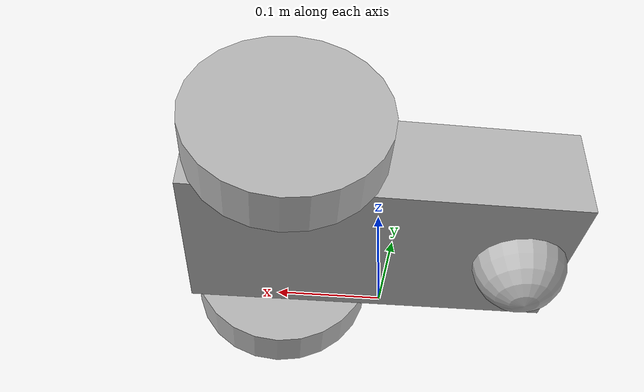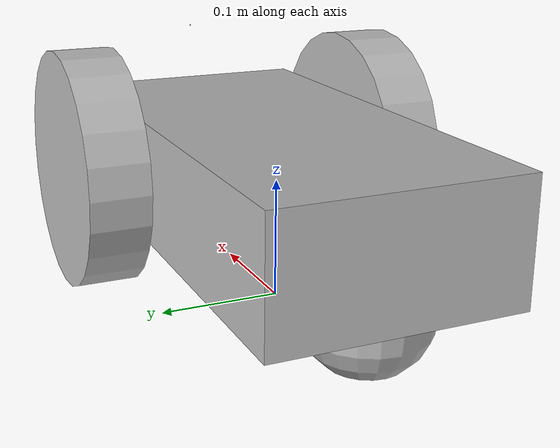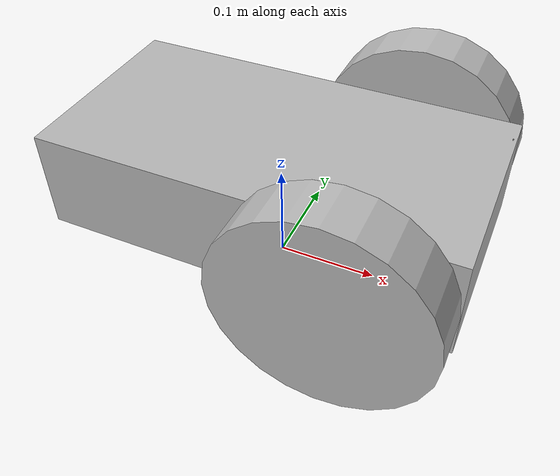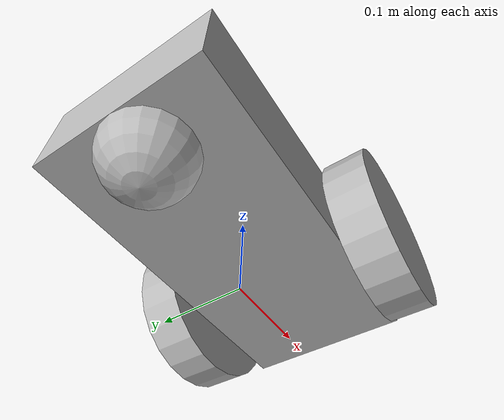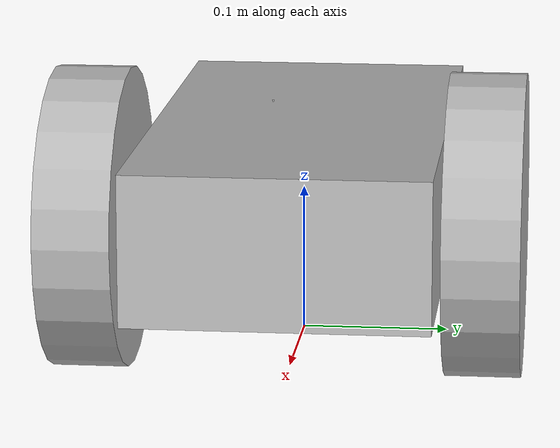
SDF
<?xml version='1.0'?>
<sdf version='1.4'>
    <model name="diffdrive">
        <static>false</static>
        <link name='chassis'>
            <pose>0 0 0.1 0 0 0</pose>
            <inertial>
                <mass>10.0</mass>
                <pose>0.0 0 0.1 0 0 0</pose>
                <inertia>
                    <ixx>0.5</ixx>
                    <iyy>1.0</iyy>
                    <izz>0.1</izz>
                </inertia>
            </inertial>
            <collision name='collision'>
                <geometry>
                    <box>
                        <size>.4 .2 .1</size>
                    </box>
                </geometry>
            </collision>
            <visual name='visual'>
                <pose>0 0 0.0 0 0 0</pose>
                <geometry>
                    <box>
                        <size>.4 .2 .1</size>
                    </box>
                </geometry>
            </visual>
            <collision name='caster_collision'>
                <pose>-0.15 0 -0.05 0 0 0</pose>
                <geometry>
                    <sphere>
                        <radius>.05</radius>
                    </sphere>
                </geometry>
                <surface>
                    <friction>
                        <ode>
                            <mu>0</mu>
                            <mu2>0</mu2>
                            <slip1>1.0</slip1>
                            <slip2>1.0</slip2>
                        </ode>
                    </friction>
                </surface>
            </collision>
            <visual name='caster_visual'>
                <pose>-0.15 0 -0.05 0 0 0</pose>
                <geometry>
                    <sphere>
                        <radius>.05</radius>
                    </sphere>
                </geometry>
            </visual>
        </link>
        <link name="left_wheel">
            <pose>0.1 0.13 0.1 0 1.5707 1.5707</pose>
            <collision name="collision">
                <geometry>
                    <cylinder>
                        <radius>.1</radius>
                        <length>.05</length>
                    </cylinder>
                </geometry>
            </collision>
            <visual name="visual">
                <geometry>
                    <cylinder>
                        <radius>.1</radius>
                        <length>.05</length>
                    </cylinder>
                </geometry>
            </visual>
        </link>
        <link name="right_wheel">
            <pose>0.1 -0.13 0.1 0 1.5707 1.5707</pose>
            <collision name="collision">
                <geometry>
                    <cylinder>
                        <radius>.1</radius>
                        <length>.05</length>
                    </cylinder>
                </geometry>
            </collision>
            <visual name="visual">
                <geometry>
                    <cylinder>
                        <radius>.1</radius>
                        <length>.05</length>
                    </cylinder>
                </geometry>
            </visual>
        </link>
        <joint type="revolute" name="left_wheel_hinge">
            <pose>0 0 -0.03 0 0 0</pose>
            <child>left_wheel</child>
            <parent>chassis</parent>
            <axis>
                <xyz>0 1 0</xyz>
            </axis>
        </joint>
        <joint type="revolute" name="right_wheel_hinge">
            <pose>0 0 0.03 0 0 0</pose>
            <child>right_wheel</child>
            <parent>chassis</parent>
            <axis>
                <xyz>0 1 0</xyz>
            </axis>
        </joint>
        <link name="camera_link">
            <gravity>false</gravity>
            <pose>0.2 0.0 0.2 0 0.1 0</pose>
            <inertial>
                <mass>0.1</mass>
            </inertial>
            <visual name="visual">
                <geometry>
                    <box>
                        <size>0.001 0.001 0.001</size>
                    </box>
                </geometry>
            </visual>
            <sensor name="camera" type="camera">
                <camera>
                    <horizontal_fov>2.79253</horizontal_fov>
                    <image>
                        <width>1280</width>
                        <height>720</height>
                    </image>
                    <clip>
                        <near>0.01</near>
                        <far>3</far>
                    </clip>
                </camera>
                <always_on>1</always_on>
                <update_rate>10</update_rate>
                <visualize>true</visualize>
                <plugin name="camera_controller" filename="libgazebo_ros_camera.so">
                    <alwaysOn>true</alwaysOn>
                    <updateRate>0.0</updateRate>
                    <cameraName>jetbot_camera</cameraName>
                    <imageTopicName>image_raw</imageTopicName>
                    <cameraInfoTopicName>camera_info</cameraInfoTopicName>
                    <frameName>camera</frameName>
                    <hackBaseline>0.07</hackBaseline>
                    <distortionK1>0.0</distortionK1>
                    <distortionK2>0.0</distortionK2>
                    <distortionK3>0.0</distortionK3>
                    <distortionT1>0.0</distortionT1>
                    <distortionT2>0.0</distortionT2>
                </plugin>
            </sensor>
        </link>
        <joint name="camera_joint" type="revolute">
            <parent>chassis</parent>
            <child>camera_link</child>
            <pose>0.0 0.0 0.0 0.0 0.0 0.0</pose>
            <axis>
                <xyz>0.1 0.0 0.0</xyz>
            </axis>
        </joint>
        <plugin name="differential_drive_controller" filename="libgazebo_ros_diff_drive.so">
            <alwaysOn>true</alwaysOn>
            <updateRate>20</updateRate>
            <leftJoint>left_wheel_hinge</leftJoint>
            <rightJoint>right_wheel_hinge</rightJoint>
            <wheelSeparation>0.4</wheelSeparation>
            <wheelDiameter>0.1</wheelDiameter>
            <torque>20</torque>
            <commandTopic>cmd_vel</commandTopic>
            <odometryTopic>odom</odometryTopic>
            <odometryFrame>odom</odometryFrame>
            <robotBaseFrame>base_footprint</robotBaseFrame>
        </plugin>
    </model>
</sdf>
